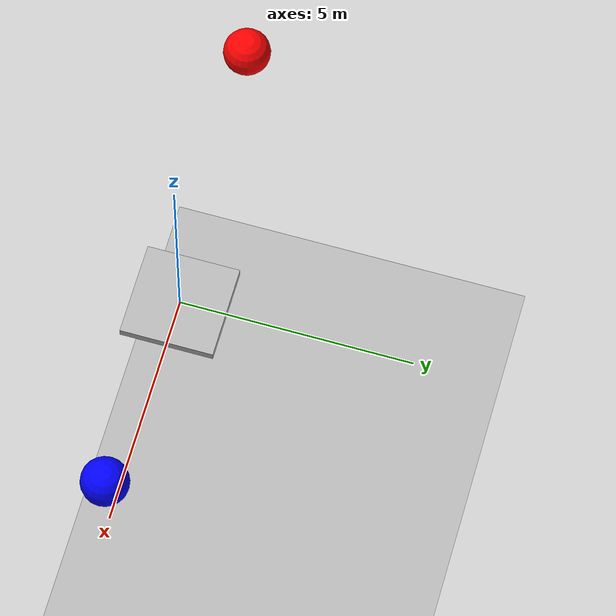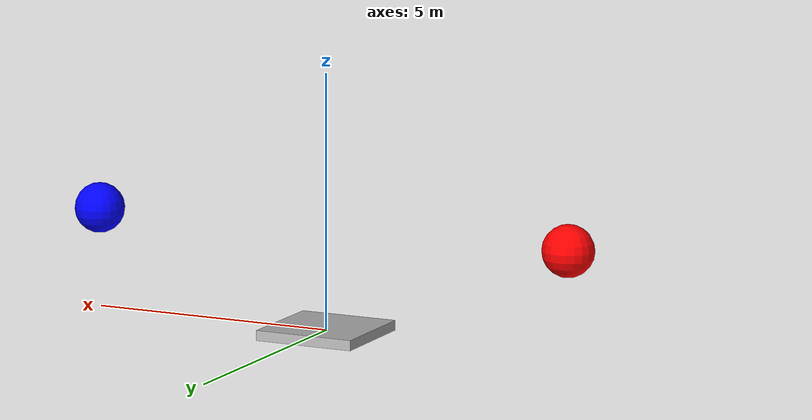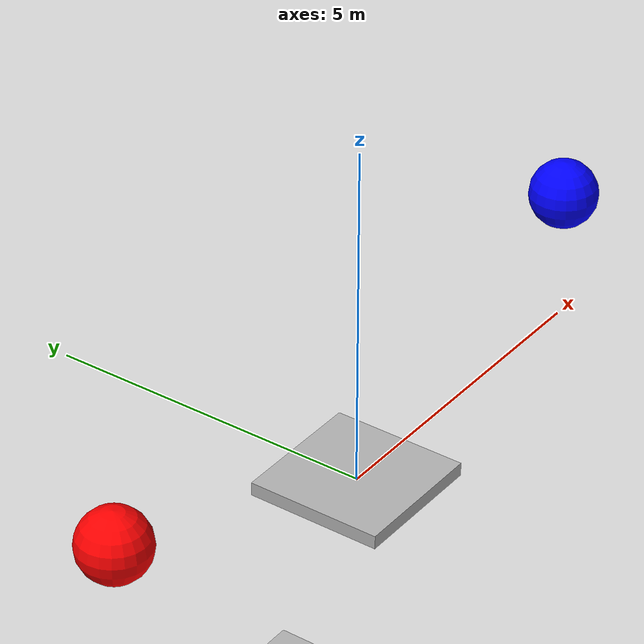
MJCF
<mujoco>
  <option gravity="0 0 -9.81"/>
  <worldbody>
    <!-- Launch Platform -->
    <body name="launch_platform" pos="0 0 0">
      <geom type="box" size="1 1 0.1" rgba="0.7 0.7 0.7 1"/>
    </body>
    <!-- Ground -->
    <body name="ground" pos="0 0 -10">
      <geom type="plane" size="30 30 0.1" rgba="0.7 0.7 0.7 1" friction="1 1 1"/>
    </body>
    <!-- Projectile 1 (High angle) -->
    <body name="projectile_1" pos="-5 0 2">
      <geom type="sphere" size="0.5" density="1" rgba="1 0 0 1"/>
      <joint name="projectile_1_joint" type="free"/>
    </body>
    <!-- Projectile 2 (Low angle) -->
    <body name="projectile_2" pos="5 0 2">
      <geom type="sphere" size="0.5" density="1" rgba="0 0 1 1"/>
      <joint name="projectile_2_joint" type="free"/>
    </body>
  </worldbody>
</mujoco>
